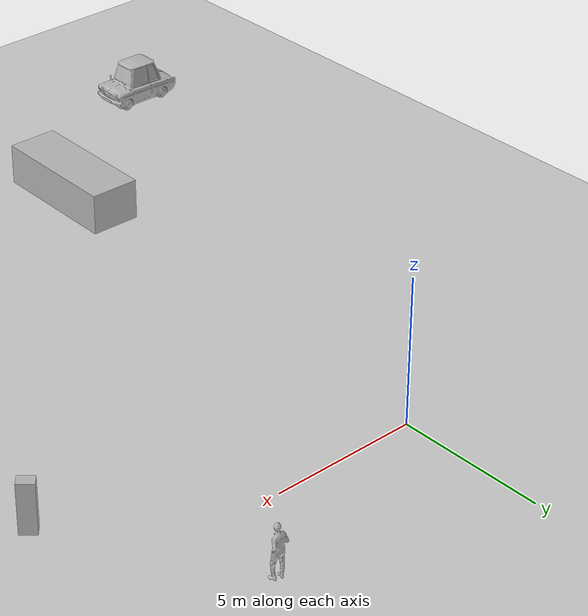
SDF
<?xml version="1.0" ?>
<sdf version="1.4">
  <world name="default">
    <gui fullscreen='0'>
      <camera name='user_camera'>
        <pose frame=''>-0.23904 -19.0487 0.901345 -0 0.071456 1.52819</pose>
        <view_controller>orbit</view_controller>
        <projection_type>perspective</projection_type>
      </camera>
    </gui>

    <physics type="ode">
      <gravity>0 0 -9.81</gravity>
      <ode>
        <solver>
          <type>world</type>
          <iters>500</iters>
          <sor>1.0</sor>
        </solver>
        <constraints>
          <cfm>0.0</cfm>
          <erp>0.2</erp>
          <contact_max_correcting_vel>0.1</contact_max_correcting_vel>
          <contact_surface_layer>0.0</contact_surface_layer>
        </constraints>
      </ode>
      <real_time_update_rate>1000</real_time_update_rate>
      <max_step_size>0.001</max_step_size>
    </physics>

    <include>
      <uri>model://car_passat</uri>
      <name>car_passat1</name>
      <pose>-1.003638 -17.657362 0.320109 0 0 3.125236</pose>
    </include>

  <include>
      <uri>model://old_car</uri>
      <name>old_car1</name>
      <pose>-7.381139 -21.600540 -0.011254 0 0 3.125236</pose>
    </include>

    <include>
      <uri>model://person_ken</uri>
      <name>person_ken</name>
      <pose>7.524980 2.741197 0.148014 0 0 0</pose>
    </include>

    <include>
      <uri>model://person_ryan</uri>
      <name>person_ryan</name>
      <pose>11.196165 -3.220906 0.046237 0 0 2.421118</pose>
    </include>

    <include>
      <uri>model://ground_plane</uri>
      <pose>0 0 0 0 0 0</pose>
    </include>

    <!-- A global light source -->
    <include>
      <uri>model://sun</uri>
    </include>

    <light name='user_point_light_0' type='point'>
      <pose frame=''>7.1 0.0 3.0 0 0 0</pose>
      <diffuse>0.2 0.2 0.2 1</diffuse>
      <specular>0.1 0.1 0.1 1</specular>
      <attenuation>
        <range>10</range>
        <constant>0.5</constant>
        <linear>0.01</linear>
        <quadratic>0.001</quadratic>
      </attenuation>
      <cast_shadows>0</cast_shadows>
      <direction>0 0 -1</direction>
    </light>

    <light name='user_point_light_1' type='point'>
      <pose frame=''>-7.1 0.0 3.0 0 0 0</pose>
      <diffuse>0.2 0.2 0.2 1</diffuse>
      <specular>0.1 0.1 0.1 1</specular>
      <attenuation>
        <range>10</range>
        <constant>0.5</constant>
        <linear>0.01</linear>
        <quadratic>0.001</quadratic>
      </attenuation>
      <cast_shadows>0</cast_shadows>
      <direction>0 0 -1</direction>
    </light>

    <light name='user_point_light_2' type='point'>
      <pose frame=''>7.1 -16.0 3.0 0 0 0</pose>
      <diffuse>0.2 0.2 0.2 1</diffuse>
      <specular>0.1 0.1 0.1 1</specular>
      <attenuation>
        <range>10</range>
        <constant>0.5</constant>
        <linear>0.01</linear>
        <quadratic>0.001</quadratic>
      </attenuation>
      <cast_shadows>0</cast_shadows>
      <direction>0 0 -1</direction>
    </light>

    <light name='user_point_light_3' type='point'>
      <pose frame=''>-7.1 -16.0 3.0 0 0 0</pose>
      <diffuse>0.2 0.2 0.2 1</diffuse>
      <specular>0.1 0.1 0.1 1</specular>
      <attenuation>
        <range>10.0</range>
        <constant>0.5</constant>
        <linear>0.01</linear>
        <quadratic>0.001</quadratic>
      </attenuation>
      <cast_shadows>0</cast_shadows>
      <direction>0 0 -1</direction>
    </light>

    <light name='user_point_light_4' type='point'>
      <pose frame=''>7.1 13.0 3.0 0 0 0</pose>
      <diffuse>0.2 0.2 0.2 1</diffuse>
      <specular>0.1 0.1 0.1 1</specular>
      <attenuation>
        <range>10.0</range>
        <constant>0.5</constant>
        <linear>0.01</linear>
        <quadratic>0.001</quadratic>
      </attenuation>
      <cast_shadows>0</cast_shadows>
      <direction>0 0 -1</direction>
    </light>

    <light name='user_point_light_5' type='point'>
      <pose frame=''>-7.1 13.0 3.0 0 0 0</pose>
      <diffuse>0.2 0.2 0.2 1</diffuse>
      <specular>0.1 0.1 0.1 1</specular>
      <attenuation>
        <range>10</range>
        <constant>0.5</constant>
        <linear>0.01</linear>
        <quadratic>0.001</quadratic>
      </attenuation>
      <cast_shadows>0</cast_shadows>
      <direction>0 0 -1</direction>
    </light>

  </world>
</sdf>

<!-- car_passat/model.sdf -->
<sdf version='1.6'>
  <model name='car_passat'>
    <link name='link_1'>
      <visual name='visual'>
        <pose frame=''>0 0 0 0 -0 0</pose>
        <geometry>
          <mesh>
            <uri>model://car_passat/meshes/car_passat.dae</uri>
            <scale>1.0 1.0 1.0</scale>
          </mesh>
        </geometry>
        <cast_shadows>0</cast_shadows>
        <transparency>0</transparency>
      </visual>
      <collision name='collision'>
        <laser_retro>0</laser_retro>
        <max_contacts>10</max_contacts>
        <pose frame=''>0 0 0 0 -0 0</pose>
        <geometry>
          <mesh>
            <uri>model://car_passat/meshes/car_passat.stl</uri>
            <scale>1.0 1.0 1.0</scale>
          </mesh>
        </geometry>
     </collision>
    </link>

    <static>1</static>
    <allow_auto_disable>1</allow_auto_disable>
  </model>
</sdf>

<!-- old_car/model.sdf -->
<sdf version='1.6'>
  <model name='old_car'>
    <link name='link_1'>
      <visual name='visual'>
        <pose frame=''>0 0 0 0 -0 0</pose>
        <geometry>
          <mesh>
            <uri>model://old_car/meshes/old_car.dae</uri>
            <scale>1.0 1.0 1.0</scale>
          </mesh>
        </geometry>
        <cast_shadows>0</cast_shadows>
        <transparency>0</transparency>
      </visual>
      <collision name='collision'>
        <laser_retro>0</laser_retro>
        <max_contacts>10</max_contacts>
        <pose frame=''>0 0 0 0 -0 0</pose>
        <geometry>
          <mesh>
            <uri>model://old_car/meshes/old_car.stl</uri>
            <scale>1.0 1.0 1.0</scale>
          </mesh>
        </geometry>
     </collision>
    </link>

    <static>1</static>
    <allow_auto_disable>1</allow_auto_disable>
  </model>
</sdf>

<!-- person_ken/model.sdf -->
<sdf version='1.6'>
  <model name='person_ken'>
    <link name='link_1'>

    <inertial>
        <mass>1.0</mass>
        <inertia> <!-- inertias are tricky to compute -->
          <!-- http://gazebosim.org/tutorials?tut=inertia&cat=build_robot -->
          <ixx>0.001666666666666667</ixx>       <!-- for a box: ixx = 0.083 * mass * (y*y + z*z) -->
          <ixy>0.0</ixy>         <!-- for a box: ixy = 0 -->
          <ixz>0.0</ixz>         <!-- for a box: ixz = 0 -->
          <iyy>0.001666666666666667</iyy>       <!-- for a box: iyy = 0.083 * mass * (x*x + z*z) -->
          <iyz>0.0</iyz>         <!-- for a box: iyz = 0 -->
          <izz>0.001666666666666667</izz>       <!-- for a box: izz = 0.083 * mass * (x*x + y*y) -->
        </inertia>
      </inertial>
         <visual name='visual'>
        <pose frame=''>0 0 0 0 -0 0</pose>
        <geometry>
          <mesh>
            <uri>model://person_ken/meshes/person_ken.dae</uri>
            <scale>1.0 1.0 1.0</scale>
          </mesh>
        </geometry>
        <cast_shadows>0</cast_shadows>
        <transparency>0</transparency>
      </visual>
      <collision name='collision'>
        <laser_retro>0</laser_retro>
        <max_contacts>10</max_contacts>
        <pose frame=''>0 0 0 0 -0 0</pose>
        <geometry>
          <mesh>
            <uri>model://person_ken/meshes/person_ken.stl</uri>
            <scale>1.0 1.0 1.0</scale>
          </mesh>
        </geometry>
     </collision>
    </link>

    <static>1</static>
    <allow_auto_disable>1</allow_auto_disable>
  </model>
</sdf>

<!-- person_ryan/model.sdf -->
<sdf version='1.6'>
  <model name='person_ryan'>
    <link name='link_1'>

    <inertial>
        <mass>1.0</mass>
        <inertia> <!-- inertias are tricky to compute -->
          <!-- http://gazebosim.org/tutorials?tut=inertia&cat=build_robot -->
          <ixx>0.001666666666666667</ixx>       <!-- for a box: ixx = 0.083 * mass * (y*y + z*z) -->
          <ixy>0.0</ixy>         <!-- for a box: ixy = 0 -->
          <ixz>0.0</ixz>         <!-- for a box: ixz = 0 -->
          <iyy>0.001666666666666667</iyy>       <!-- for a box: iyy = 0.083 * mass * (x*x + z*z) -->
          <iyz>0.0</iyz>         <!-- for a box: iyz = 0 -->
          <izz>0.001666666666666667</izz>       <!-- for a box: izz = 0.083 * mass * (x*x + y*y) -->
        </inertia>
      </inertial>
         <visual name='visual'>
        <pose frame=''>0 0 0 0 -0 0</pose>
        <geometry>
          <mesh>
            <uri>model://person_ryan/meshes/person_ryan.dae</uri>
            <scale>1.0 1.0 1.0</scale>
          </mesh>
        </geometry>
        <cast_shadows>0</cast_shadows>
        <transparency>0</transparency>
      </visual>
      <collision name='collision'>
        <laser_retro>0</laser_retro>
        <max_contacts>10</max_contacts>
        <pose frame=''>0 0 0 0 -0 0</pose>
        <geometry>
          <mesh>
            <uri>model://person_ryan/meshes/person_ryan.stl</uri>
            <scale>1.0 1.0 1.0</scale>
          </mesh>
        </geometry>
     </collision>
    </link>

    <static>1</static>
    <allow_auto_disable>1</allow_auto_disable>
  </model>
</sdf>
